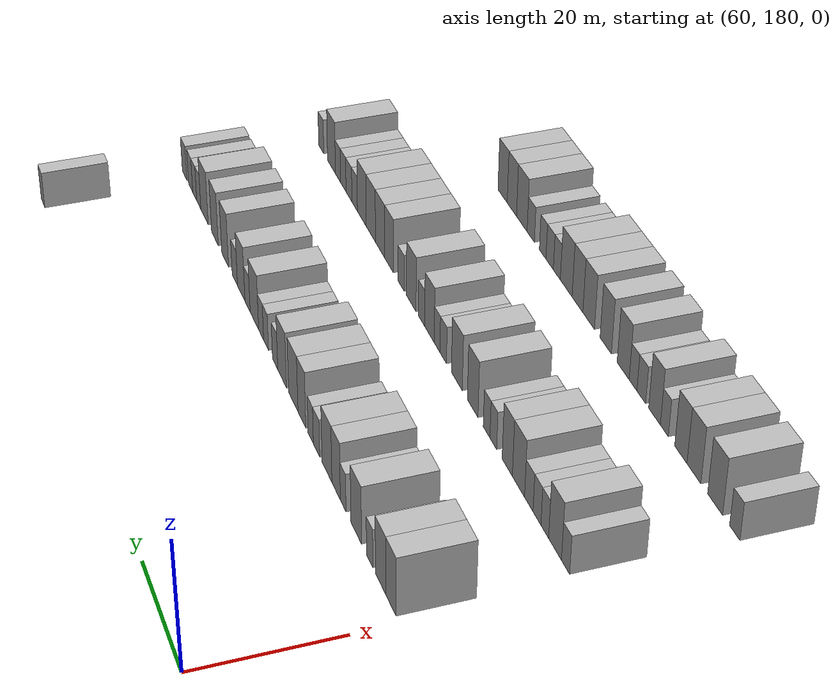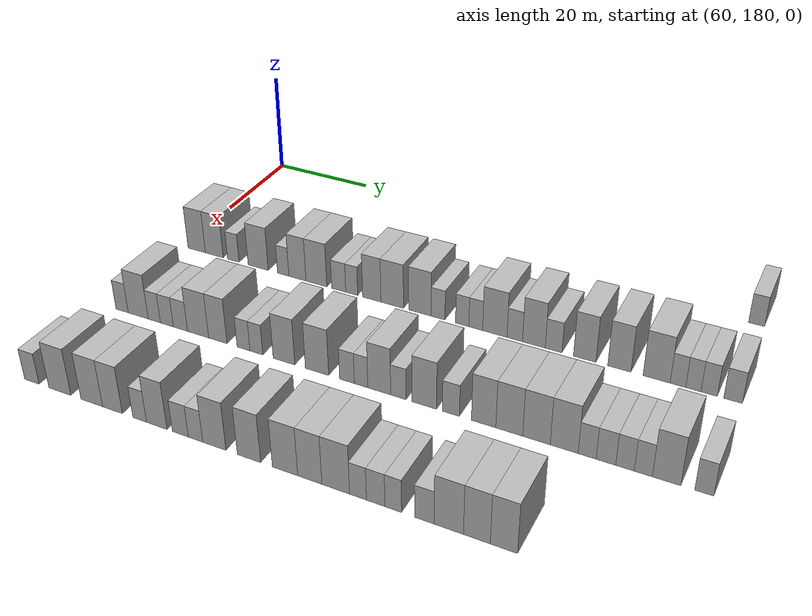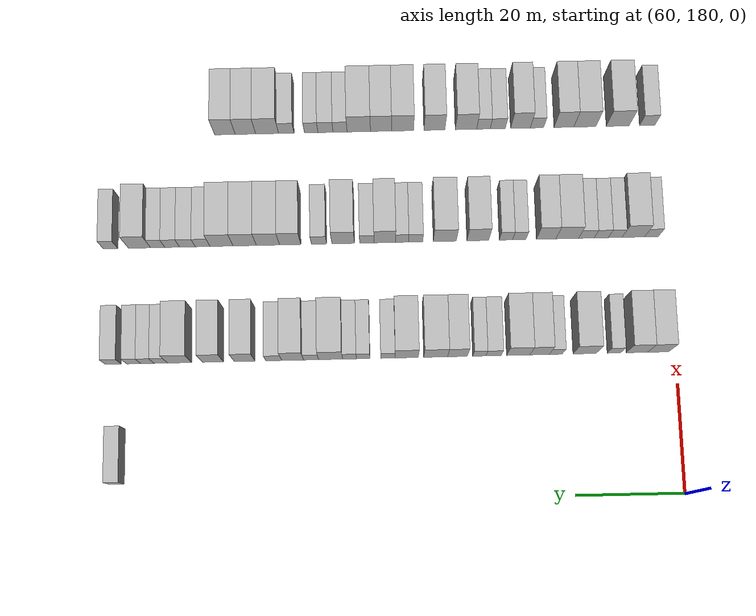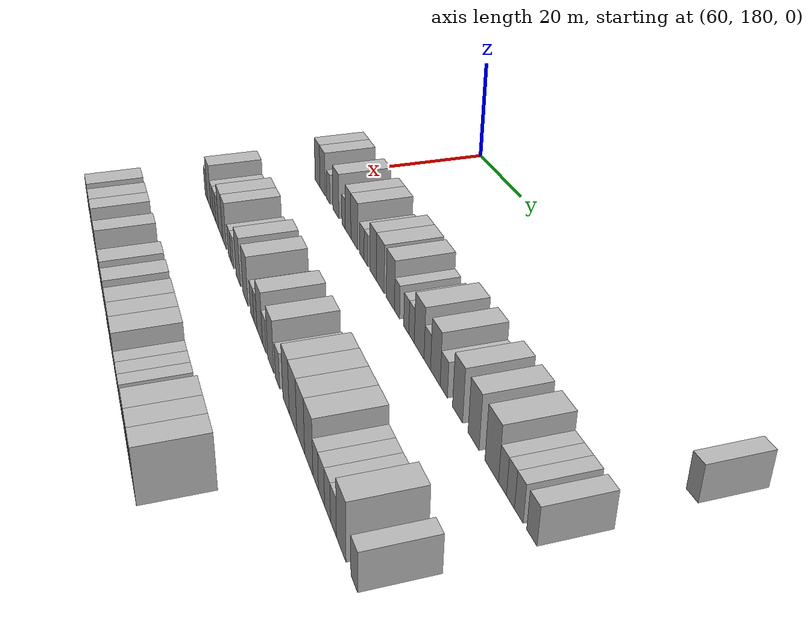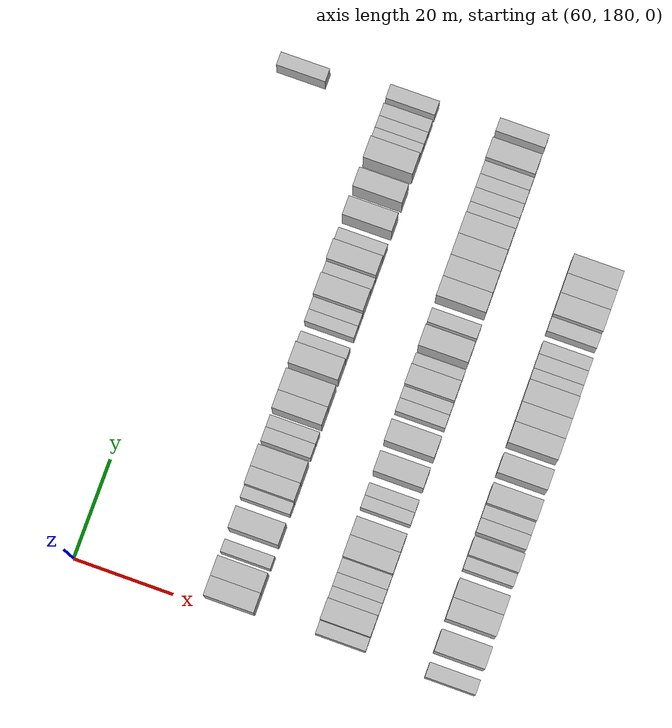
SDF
<sdf version="1.6">
 <world name="default">
  <model name="building_527">
   <static>1</static>
   <pose>69.0000 283.2264 0 0.000000 0.000000 0.000000</pose>
   <link name="link">
    <pose>0 0 3.00 0 0 0</pose>
    <collision name="collision"><geometry><box><size>10.0000 2.7192 6.0000</size></box></geometry></collision>
    <visual name="visual">
     <cast_shadows>0</cast_shadows>
     <geometry><box><size>10.0000 2.7192 6.0000</size></box></geometry>
     <material>
      <script>
       <uri>model://HANNAS_wall/materials/scripts</uri>
       <uri>model://HANNAS_wall/materials/textures</uri>
       <name>vrc/HANNAS_wall</name>
      </script>
     </material>
    </visual>
   </link>
  </model>
  <model name="building_696">
   <static>1</static>
   <pose>91.0000 183.3023 0 0.000000 0.000000 0.000000</pose>
   <link name="link">
    <pose>0 0 4.50 0 0 0</pose>
    <collision name="collision"><geometry><box><size>10.0000 3.9169 9.0000</size></box></geometry></collision>
    <visual name="visual">
     <cast_shadows>0</cast_shadows>
     <geometry><box><size>10.0000 3.9169 9.0000</size></box></geometry>
     <material>
      <script>
       <uri>model://HANNAS_wall/materials/scripts</uri>
       <uri>model://HANNAS_wall/materials/textures</uri>
       <name>vrc/HANNAS_wall</name>
      </script>
     </material>
    </visual>
   </link>
  </model>
  <model name="building_697">
   <static>1</static>
   <pose>91.0000 187.2503 0 0.000000 0.000000 0.000000</pose>
   <link name="link">
    <pose>0 0 4.50 0 0 0</pose>
    <collision name="collision"><geometry><box><size>10.0000 3.9792 9.0000</size></box></geometry></collision>
    <visual name="visual">
     <cast_shadows>0</cast_shadows>
     <geometry><box><size>10.0000 3.9792 9.0000</size></box></geometry>
     <material>
      <script>
       <uri>model://HANNAS_wall/materials/scripts</uri>
       <uri>model://HANNAS_wall/materials/textures</uri>
       <name>vrc/HANNAS_wall</name>
      </script>
     </material>
    </visual>
   </link>
  </model>
  <model name="building_698">
   <static>1</static>
   <pose>91.0000 191.5009 0 0.000000 0.000000 0.000000</pose>
   <link name="link">
    <pose>0 0 3.00 0 0 0</pose>
    <collision name="collision"><geometry><box><size>10.0000 2.5220 6.0000</size></box></geometry></collision>
    <visual name="visual">
     <cast_shadows>0</cast_shadows>
     <geometry><box><size>10.0000 2.5220 6.0000</size></box></geometry>
     <material>
      <script>
       <uri>model://HANNAS_wall/materials/scripts</uri>
       <uri>model://HANNAS_wall/materials/textures</uri>
       <name>vrc/HANNAS_wall</name>
      </script>
     </material>
    </visual>
   </link>
  </model>
  <model name="building_699">
   <static>1</static>
   <pose>91.0000 196.9347 0 0.000000 0.000000 0.000000</pose>
   <link name="link">
    <pose>0 0 4.50 0 0 0</pose>
    <collision name="collision"><geometry><box><size>10.0000 4.3456 9.0000</size></box></geometry></collision>
    <visual name="visual">
     <cast_shadows>0</cast_shadows>
     <geometry><box><size>10.0000 4.3456 9.0000</size></box></geometry>
     <material>
      <script>
       <uri>model://HANNAS_wall/materials/scripts</uri>
       <uri>model://HANNAS_wall/materials/textures</uri>
       <name>vrc/HANNAS_wall</name>
      </script>
     </material>
    </visual>
   </link>
  </model>
  <model name="building_700">
   <static>1</static>
   <pose>91.0000 202.3082 0 0.000000 0.000000 0.000000</pose>
   <link name="link">
    <pose>0 0 3.00 0 0 0</pose>
    <collision name="collision"><geometry><box><size>10.0000 2.4014 6.0000</size></box></geometry></collision>
    <visual name="visual">
     <cast_shadows>0</cast_shadows>
     <geometry><box><size>10.0000 2.4014 6.0000</size></box></geometry>
     <material>
      <script>
       <uri>model://HANNAS_wall/materials/scripts</uri>
       <uri>model://HANNAS_wall/materials/textures</uri>
       <name>vrc/HANNAS_wall</name>
      </script>
     </material>
    </visual>
   </link>
  </model>
  <model name="building_701">
   <static>1</static>
   <pose>91.0000 205.3127 0 0.000000 0.000000 0.000000</pose>
   <link name="link">
    <pose>0 0 4.50 0 0 0</pose>
    <collision name="collision"><geometry><box><size>10.0000 3.6076 9.0000</size></box></geometry></collision>
    <visual name="visual">
     <cast_shadows>0</cast_shadows>
     <geometry><box><size>10.0000 3.6076 9.0000</size></box></geometry>
     <material>
      <script>
       <uri>model://HANNAS_wall/materials/scripts</uri>
       <uri>model://HANNAS_wall/materials/textures</uri>
       <name>vrc/HANNAS_wall</name>
      </script>
     </material>
    </visual>
   </link>
  </model>
  <model name="building_702">
   <static>1</static>
   <pose>91.0000 209.2788 0 0.000000 0.000000 0.000000</pose>
   <link name="link">
    <pose>0 0 4.50 0 0 0</pose>
    <collision name="collision"><geometry><box><size>10.0000 4.3246 9.0000</size></box></geometry></collision>
    <visual name="visual">
     <cast_shadows>0</cast_shadows>
     <geometry><box><size>10.0000 4.3246 9.0000</size></box></geometry>
     <material>
      <script>
       <uri>model://HANNAS_wall/materials/scripts</uri>
       <uri>model://HANNAS_wall/materials/textures</uri>
       <name>vrc/HANNAS_wall</name>
      </script>
     </material>
    </visual>
   </link>
  </model>
  <model name="building_703">
   <static>1</static>
   <pose>91.0000 213.8764 0 0.000000 0.000000 0.000000</pose>
   <link name="link">
    <pose>0 0 3.00 0 0 0</pose>
    <collision name="collision"><geometry><box><size>10.0000 2.8707 6.0000</size></box></geometry></collision>
    <visual name="visual">
     <cast_shadows>0</cast_shadows>
     <geometry><box><size>10.0000 2.8707 6.0000</size></box></geometry>
     <material>
      <script>
       <uri>model://HANNAS_wall/materials/scripts</uri>
       <uri>model://HANNAS_wall/materials/textures</uri>
       <name>vrc/HANNAS_wall</name>
      </script>
     </material>
    </visual>
   </link>
  </model>
  <model name="building_704">
   <static>1</static>
   <pose>91.0000 216.5198 0 0.000000 0.000000 0.000000</pose>
   <link name="link">
    <pose>0 0 3.00 0 0 0</pose>
    <collision name="collision"><geometry><box><size>10.0000 2.4159 6.0000</size></box></geometry></collision>
    <visual name="visual">
     <cast_shadows>0</cast_shadows>
     <geometry><box><size>10.0000 2.4159 6.0000</size></box></geometry>
     <material>
      <script>
       <uri>model://HANNAS_wall/materials/scripts</uri>
       <uri>model://HANNAS_wall/materials/textures</uri>
       <name>vrc/HANNAS_wall</name>
      </script>
     </material>
    </visual>
   </link>
  </model>
  <model name="building_705">
   <static>1</static>
   <pose>91.0000 220.5530 0 0.000000 0.000000 0.000000</pose>
   <link name="link">
    <pose>0 0 4.50 0 0 0</pose>
    <collision name="collision"><geometry><box><size>10.0000 3.6505 9.0000</size></box></geometry></collision>
    <visual name="visual">
     <cast_shadows>0</cast_shadows>
     <geometry><box><size>10.0000 3.6505 9.0000</size></box></geometry>
     <material>
      <script>
       <uri>model://HANNAS_wall/materials/scripts</uri>
       <uri>model://HANNAS_wall/materials/textures</uri>
       <name>vrc/HANNAS_wall</name>
      </script>
     </material>
    </visual>
   </link>
  </model>
  <model name="building_706">
   <static>1</static>
   <pose>91.0000 224.5917 0 0.000000 0.000000 0.000000</pose>
   <link name="link">
    <pose>0 0 4.50 0 0 0</pose>
    <collision name="collision"><geometry><box><size>10.0000 4.4269 9.0000</size></box></geometry></collision>
    <visual name="visual">
     <cast_shadows>0</cast_shadows>
     <geometry><box><size>10.0000 4.4269 9.0000</size></box></geometry>
     <material>
      <script>
       <uri>model://HANNAS_wall/materials/scripts</uri>
       <uri>model://HANNAS_wall/materials/textures</uri>
       <name>vrc/HANNAS_wall</name>
      </script>
     </material>
    </visual>
   </link>
  </model>
  <model name="building_707">
   <static>1</static>
   <pose>91.0000 229.9655 0 0.000000 0.000000 0.000000</pose>
   <link name="link">
    <pose>0 0 4.50 0 0 0</pose>
    <collision name="collision"><geometry><box><size>10.0000 4.3207 9.0000</size></box></geometry></collision>
    <visual name="visual">
     <cast_shadows>0</cast_shadows>
     <geometry><box><size>10.0000 4.3207 9.0000</size></box></geometry>
     <material>
      <script>
       <uri>model://HANNAS_wall/materials/scripts</uri>
       <uri>model://HANNAS_wall/materials/textures</uri>
       <name>vrc/HANNAS_wall</name>
      </script>
     </material>
    </visual>
   </link>
  </model>
  <model name="building_708">
   <static>1</static>
   <pose>91.0000 233.4436 0 0.000000 0.000000 0.000000</pose>
   <link name="link">
    <pose>0 0 3.00 0 0 0</pose>
    <collision name="collision"><geometry><box><size>10.0000 2.6356 6.0000</size></box></geometry></collision>
    <visual name="visual">
     <cast_shadows>0</cast_shadows>
     <geometry><box><size>10.0000 2.6356 6.0000</size></box></geometry>
     <material>
      <script>
       <uri>model://HANNAS_wall/materials/scripts</uri>
       <uri>model://HANNAS_wall/materials/textures</uri>
       <name>vrc/HANNAS_wall</name>
      </script>
     </material>
    </visual>
   </link>
  </model>
  <model name="building_709">
   <static>1</static>
   <pose>91.0000 238.0039 0 0.000000 0.000000 0.000000</pose>
   <link name="link">
    <pose>0 0 3.00 0 0 0</pose>
    <collision name="collision"><geometry><box><size>10.0000 2.4851 6.0000</size></box></geometry></collision>
    <visual name="visual">
     <cast_shadows>0</cast_shadows>
     <geometry><box><size>10.0000 2.4851 6.0000</size></box></geometry>
     <material>
      <script>
       <uri>model://HANNAS_wall/materials/scripts</uri>
       <uri>model://HANNAS_wall/materials/textures</uri>
       <name>vrc/HANNAS_wall</name>
      </script>
     </material>
    </visual>
   </link>
  </model>
  <model name="building_710">
   <static>1</static>
   <pose>91.0000 240.5194 0 0.000000 0.000000 0.000000</pose>
   <link name="link">
    <pose>0 0 3.00 0 0 0</pose>
    <collision name="collision"><geometry><box><size>10.0000 2.5459 6.0000</size></box></geometry></collision>
    <visual name="visual">
     <cast_shadows>0</cast_shadows>
     <geometry><box><size>10.0000 2.5459 6.0000</size></box></geometry>
     <material>
      <script>
       <uri>model://HANNAS_wall/materials/scripts</uri>
       <uri>model://HANNAS_wall/materials/textures</uri>
       <name>vrc/HANNAS_wall</name>
      </script>
     </material>
    </visual>
   </link>
  </model>
  <model name="building_711">
   <static>1</static>
   <pose>91.0000 244.0189 0 0.000000 0.000000 0.000000</pose>
   <link name="link">
    <pose>0 0 4.50 0 0 0</pose>
    <collision name="collision"><geometry><box><size>10.0000 4.4532 9.0000</size></box></geometry></collision>
    <visual name="visual">
     <cast_shadows>0</cast_shadows>
     <geometry><box><size>10.0000 4.4532 9.0000</size></box></geometry>
     <material>
      <script>
       <uri>model://HANNAS_wall/materials/scripts</uri>
       <uri>model://HANNAS_wall/materials/textures</uri>
       <name>vrc/HANNAS_wall</name>
      </script>
     </material>
    </visual>
   </link>
  </model>
  <model name="building_712">
   <static>1</static>
   <pose>91.0000 247.6435 0 0.000000 0.000000 0.000000</pose>
   <link name="link">
    <pose>0 0 3.00 0 0 0</pose>
    <collision name="collision"><geometry><box><size>10.0000 2.7960 6.0000</size></box></geometry></collision>
    <visual name="visual">
     <cast_shadows>0</cast_shadows>
     <geometry><box><size>10.0000 2.7960 6.0000</size></box></geometry>
     <material>
      <script>
       <uri>model://HANNAS_wall/materials/scripts</uri>
       <uri>model://HANNAS_wall/materials/textures</uri>
       <name>vrc/HANNAS_wall</name>
      </script>
     </material>
    </visual>
   </link>
  </model>
  <model name="building_713">
   <static>1</static>
   <pose>91.0000 251.0618 0 0.000000 0.000000 0.000000</pose>
   <link name="link">
    <pose>0 0 4.50 0 0 0</pose>
    <collision name="collision"><geometry><box><size>10.0000 4.0406 9.0000</size></box></geometry></collision>
    <visual name="visual">
     <cast_shadows>0</cast_shadows>
     <geometry><box><size>10.0000 4.0406 9.0000</size></box></geometry>
     <material>
      <script>
       <uri>model://HANNAS_wall/materials/scripts</uri>
       <uri>model://HANNAS_wall/materials/textures</uri>
       <name>vrc/HANNAS_wall</name>
      </script>
     </material>
    </visual>
   </link>
  </model>
  <model name="building_714">
   <static>1</static>
   <pose>91.0000 254.5524 0 0.000000 0.000000 0.000000</pose>
   <link name="link">
    <pose>0 0 3.00 0 0 0</pose>
    <collision name="collision"><geometry><box><size>10.0000 2.9406 6.0000</size></box></geometry></collision>
    <visual name="visual">
     <cast_shadows>0</cast_shadows>
     <geometry><box><size>10.0000 2.9406 6.0000</size></box></geometry>
     <material>
      <script>
       <uri>model://HANNAS_wall/materials/scripts</uri>
       <uri>model://HANNAS_wall/materials/textures</uri>
       <name>vrc/HANNAS_wall</name>
      </script>
     </material>
    </visual>
   </link>
  </model>
  <model name="building_715">
   <static>1</static>
   <pose>91.0000 259.9507 0 0.000000 0.000000 0.000000</pose>
   <link name="link">
    <pose>0 0 4.50 0 0 0</pose>
    <collision name="collision"><geometry><box><size>10.0000 3.8560 9.0000</size></box></geometry></collision>
    <visual name="visual">
     <cast_shadows>0</cast_shadows>
     <geometry><box><size>10.0000 3.8560 9.0000</size></box></geometry>
     <material>
      <script>
       <uri>model://HANNAS_wall/materials/scripts</uri>
       <uri>model://HANNAS_wall/materials/textures</uri>
       <name>vrc/HANNAS_wall</name>
      </script>
     </material>
    </visual>
   </link>
  </model>
  <model name="building_716">
   <static>1</static>
   <pose>91.0000 265.8364 0 0.000000 0.000000 0.000000</pose>
   <link name="link">
    <pose>0 0 4.50 0 0 0</pose>
    <collision name="collision"><geometry><box><size>10.0000 3.9154 9.0000</size></box></geometry></collision>
    <visual name="visual">
     <cast_shadows>0</cast_shadows>
     <geometry><box><size>10.0000 3.9154 9.0000</size></box></geometry>
     <material>
      <script>
       <uri>model://HANNAS_wall/materials/scripts</uri>
       <uri>model://HANNAS_wall/materials/textures</uri>
       <name>vrc/HANNAS_wall</name>
      </script>
     </material>
    </visual>
   </link>
  </model>
  <model name="building_717">
   <static>1</static>
   <pose>91.0000 272.0075 0 0.000000 0.000000 0.000000</pose>
   <link name="link">
    <pose>0 0 4.50 0 0 0</pose>
    <collision name="collision"><geometry><box><size>10.0000 4.4269 9.0000</size></box></geometry></collision>
    <visual name="visual">
     <cast_shadows>0</cast_shadows>
     <geometry><box><size>10.0000 4.4269 9.0000</size></box></geometry>
     <material>
      <script>
       <uri>model://HANNAS_wall/materials/scripts</uri>
       <uri>model://HANNAS_wall/materials/textures</uri>
       <name>vrc/HANNAS_wall</name>
      </script>
     </material>
    </visual>
   </link>
  </model>
  <model name="building_718">
   <static>1</static>
   <pose>91.0000 275.4775 0 0.000000 0.000000 0.000000</pose>
   <link name="link">
    <pose>0 0 3.00 0 0 0</pose>
    <collision name="collision"><geometry><box><size>10.0000 2.5130 6.0000</size></box></geometry></collision>
    <visual name="visual">
     <cast_shadows>0</cast_shadows>
     <geometry><box><size>10.0000 2.5130 6.0000</size></box></geometry>
     <material>
      <script>
       <uri>model://HANNAS_wall/materials/scripts</uri>
       <uri>model://HANNAS_wall/materials/textures</uri>
       <name>vrc/HANNAS_wall</name>
      </script>
     </material>
    </visual>
   </link>
  </model>
  <model name="building_719">
   <static>1</static>
   <pose>91.0000 277.9604 0 0.000000 0.000000 0.000000</pose>
   <link name="link">
    <pose>0 0 3.00 0 0 0</pose>
    <collision name="collision"><geometry><box><size>10.0000 2.4526 6.0000</size></box></geometry></collision>
    <visual name="visual">
     <cast_shadows>0</cast_shadows>
     <geometry><box><size>10.0000 2.4526 6.0000</size></box></geometry>
     <material>
      <script>
       <uri>model://HANNAS_wall/materials/scripts</uri>
       <uri>model://HANNAS_wall/materials/textures</uri>
       <name>vrc/HANNAS_wall</name>
      </script>
     </material>
    </visual>
   </link>
  </model>
  <model name="building_720">
   <static>1</static>
   <pose>91.0000 280.4814 0 0.000000 0.000000 0.000000</pose>
   <link name="link">
    <pose>0 0 3.00 0 0 0</pose>
    <collision name="collision"><geometry><box><size>10.0000 2.5894 6.0000</size></box></geometry></collision>
    <visual name="visual">
     <cast_shadows>0</cast_shadows>
     <geometry><box><size>10.0000 2.5894 6.0000</size></box></geometry>
     <material>
      <script>
       <uri>model://HANNAS_wall/materials/scripts</uri>
       <uri>model://HANNAS_wall/materials/textures</uri>
       <name>vrc/HANNAS_wall</name>
      </script>
     </material>
    </visual>
   </link>
  </model>
  <model name="building_721">
   <static>1</static>
   <pose>91.0000 284.2351 0 0.000000 0.000000 0.000000</pose>
   <link name="link">
    <pose>0 0 3.00 0 0 0</pose>
    <collision name="collision"><geometry><box><size>10.0000 2.9180 6.0000</size></box></geometry></collision>
    <visual name="visual">
     <cast_shadows>0</cast_shadows>
     <geometry><box><size>10.0000 2.9180 6.0000</size></box></geometry>
     <material>
      <script>
       <uri>model://HANNAS_wall/materials/scripts</uri>
       <uri>model://HANNAS_wall/materials/textures</uri>
       <name>vrc/HANNAS_wall</name>
      </script>
     </material>
    </visual>
   </link>
  </model>
  <model name="building_893">
   <static>1</static>
   <pose>113.0000 183.1441 0 0.000000 0.000000 0.000000</pose>
   <link name="link">
    <pose>0 0 3.00 0 0 0</pose>
    <collision name="collision"><geometry><box><size>10.0000 2.6440 6.0000</size></box></geometry></collision>
    <visual name="visual">
     <cast_shadows>0</cast_shadows>
     <geometry><box><size>10.0000 2.6440 6.0000</size></box></geometry>
     <material>
      <script>
       <uri>model://HANNAS_wall/materials/scripts</uri>
       <uri>model://HANNAS_wall/materials/textures</uri>
       <name>vrc/HANNAS_wall</name>
      </script>
     </material>
    </visual>
   </link>
  </model>
  <model name="building_894">
   <static>1</static>
   <pose>113.0000 186.5907 0 0.000000 0.000000 0.000000</pose>
   <link name="link">
    <pose>0 0 4.50 0 0 0</pose>
    <collision name="collision"><geometry><box><size>10.0000 4.2491 9.0000</size></box></geometry></collision>
    <visual name="visual">
     <cast_shadows>0</cast_shadows>
     <geometry><box><size>10.0000 4.2491 9.0000</size></box></geometry>
     <material>
      <script>
       <uri>model://HANNAS_wall/materials/scripts</uri>
       <uri>model://HANNAS_wall/materials/textures</uri>
       <name>vrc/HANNAS_wall</name>
      </script>
     </material>
    </visual>
   </link>
  </model>
  <model name="building_895">
   <static>1</static>
   <pose>113.0000 190.0043 0 0.000000 0.000000 0.000000</pose>
   <link name="link">
    <pose>0 0 3.00 0 0 0</pose>
    <collision name="collision"><geometry><box><size>10.0000 2.5781 6.0000</size></box></geometry></collision>
    <visual name="visual">
     <cast_shadows>0</cast_shadows>
     <geometry><box><size>10.0000 2.5781 6.0000</size></box></geometry>
     <material>
      <script>
       <uri>model://HANNAS_wall/materials/scripts</uri>
       <uri>model://HANNAS_wall/materials/textures</uri>
       <name>vrc/HANNAS_wall</name>
      </script>
     </material>
    </visual>
   </link>
  </model>
  <model name="building_896">
   <static>1</static>
   <pose>113.0000 192.6362 0 0.000000 0.000000 0.000000</pose>
   <link name="link">
    <pose>0 0 3.00 0 0 0</pose>
    <collision name="collision"><geometry><box><size>10.0000 2.6856 6.0000</size></box></geometry></collision>
    <visual name="visual">
     <cast_shadows>0</cast_shadows>
     <geometry><box><size>10.0000 2.6856 6.0000</size></box></geometry>
     <material>
      <script>
       <uri>model://HANNAS_wall/materials/scripts</uri>
       <uri>model://HANNAS_wall/materials/textures</uri>
       <name>vrc/HANNAS_wall</name>
      </script>
     </material>
    </visual>
   </link>
  </model>
  <model name="building_897">
   <static>1</static>
   <pose>113.0000 195.4423 0 0.000000 0.000000 0.000000</pose>
   <link name="link">
    <pose>0 0 3.00 0 0 0</pose>
    <collision name="collision"><geometry><box><size>10.0000 2.9266 6.0000</size></box></geometry></collision>
    <visual name="visual">
     <cast_shadows>0</cast_shadows>
     <geometry><box><size>10.0000 2.9266 6.0000</size></box></geometry>
     <material>
      <script>
       <uri>model://HANNAS_wall/materials/scripts</uri>
       <uri>model://HANNAS_wall/materials/textures</uri>
       <name>vrc/HANNAS_wall</name>
      </script>
     </material>
    </visual>
   </link>
  </model>
  <model name="building_898">
   <static>1</static>
   <pose>113.0000 199.0591 0 0.000000 0.000000 0.000000</pose>
   <link name="link">
    <pose>0 0 4.50 0 0 0</pose>
    <collision name="collision"><geometry><box><size>10.0000 4.3070 9.0000</size></box></geometry></collision>
    <visual name="visual">
     <cast_shadows>0</cast_shadows>
     <geometry><box><size>10.0000 4.3070 9.0000</size></box></geometry>
     <material>
      <script>
       <uri>model://HANNAS_wall/materials/scripts</uri>
       <uri>model://HANNAS_wall/materials/textures</uri>
       <name>vrc/HANNAS_wall</name>
      </script>
     </material>
    </visual>
   </link>
  </model>
  <model name="building_899">
   <static>1</static>
   <pose>113.0000 203.0566 0 0.000000 0.000000 0.000000</pose>
   <link name="link">
    <pose>0 0 4.50 0 0 0</pose>
    <collision name="collision"><geometry><box><size>10.0000 3.6880 9.0000</size></box></geometry></collision>
    <visual name="visual">
     <cast_shadows>0</cast_shadows>
     <geometry><box><size>10.0000 3.6880 9.0000</size></box></geometry>
     <material>
      <script>
       <uri>model://HANNAS_wall/materials/scripts</uri>
       <uri>model://HANNAS_wall/materials/textures</uri>
       <name>vrc/HANNAS_wall</name>
      </script>
     </material>
    </visual>
   </link>
  </model>
  <model name="building_900">
   <static>1</static>
   <pose>113.0000 208.1593 0 0.000000 0.000000 0.000000</pose>
   <link name="link">
    <pose>0 0 3.00 0 0 0</pose>
    <collision name="collision"><geometry><box><size>10.0000 2.5176 6.0000</size></box></geometry></collision>
    <visual name="visual">
     <cast_shadows>0</cast_shadows>
     <geometry><box><size>10.0000 2.5176 6.0000</size></box></geometry>
     <material>
      <script>
       <uri>model://HANNAS_wall/materials/scripts</uri>
       <uri>model://HANNAS_wall/materials/textures</uri>
       <name>vrc/HANNAS_wall</name>
      </script>
     </material>
    </visual>
   </link>
  </model>
  <model name="building_901">
   <static>1</static>
   <pose>113.0000 210.6706 0 0.000000 0.000000 0.000000</pose>
   <link name="link">
    <pose>0 0 3.00 0 0 0</pose>
    <collision name="collision"><geometry><box><size>10.0000 2.5049 6.0000</size></box></geometry></collision>
    <visual name="visual">
     <cast_shadows>0</cast_shadows>
     <geometry><box><size>10.0000 2.5049 6.0000</size></box></geometry>
     <material>
      <script>
       <uri>model://HANNAS_wall/materials/scripts</uri>
       <uri>model://HANNAS_wall/materials/textures</uri>
       <name>vrc/HANNAS_wall</name>
      </script>
     </material>
    </visual>
   </link>
  </model>
  <model name="building_902">
   <static>1</static>
   <pose>113.0000 215.9800 0 0.000000 0.000000 0.000000</pose>
   <link name="link">
    <pose>0 0 4.50 0 0 0</pose>
    <collision name="collision"><geometry><box><size>10.0000 4.1140 9.0000</size></box></geometry></collision>
    <visual name="visual">
     <cast_shadows>0</cast_shadows>
     <geometry><box><size>10.0000 4.1140 9.0000</size></box></geometry>
     <material>
      <script>
       <uri>model://HANNAS_wall/materials/scripts</uri>
       <uri>model://HANNAS_wall/materials/textures</uri>
       <name>vrc/HANNAS_wall</name>
      </script>
     </material>
    </visual>
   </link>
  </model>
  <model name="building_903">
   <static>1</static>
   <pose>113.0000 222.2070 0 0.000000 0.000000 0.000000</pose>
   <link name="link">
    <pose>0 0 4.50 0 0 0</pose>
    <collision name="collision"><geometry><box><size>10.0000 4.3399 9.0000</size></box></geometry></collision>
    <visual name="visual">
     <cast_shadows>0</cast_shadows>
     <geometry><box><size>10.0000 4.3399 9.0000</size></box></geometry>
     <material>
      <script>
       <uri>model://HANNAS_wall/materials/scripts</uri>
       <uri>model://HANNAS_wall/materials/textures</uri>
       <name>vrc/HANNAS_wall</name>
      </script>
     </material>
    </visual>
   </link>
  </model>
  <model name="building_904">
   <static>1</static>
   <pose>113.0000 227.7220 0 0.000000 0.000000 0.000000</pose>
   <link name="link">
    <pose>0 0 3.00 0 0 0</pose>
    <collision name="collision"><geometry><box><size>10.0000 2.6901 6.0000</size></box></geometry></collision>
    <visual name="visual">
     <cast_shadows>0</cast_shadows>
     <geometry><box><size>10.0000 2.6901 6.0000</size></box></geometry>
     <material>
      <script>
       <uri>model://HANNAS_wall/materials/scripts</uri>
       <uri>model://HANNAS_wall/materials/textures</uri>
       <name>vrc/HANNAS_wall</name>
      </script>
     </material>
    </visual>
   </link>
  </model>
  <model name="building_905">
   <static>1</static>
   <pose>113.0000 230.2750 0 0.000000 0.000000 0.000000</pose>
   <link name="link">
    <pose>0 0 3.00 0 0 0</pose>
    <collision name="collision"><geometry><box><size>10.0000 2.4159 6.0000</size></box></geometry></collision>
    <visual name="visual">
     <cast_shadows>0</cast_shadows>
     <geometry><box><size>10.0000 2.4159 6.0000</size></box></geometry>
     <material>
      <script>
       <uri>model://HANNAS_wall/materials/scripts</uri>
       <uri>model://HANNAS_wall/materials/textures</uri>
       <name>vrc/HANNAS_wall</name>
      </script>
     </material>
    </visual>
   </link>
  </model>
  <model name="building_906">
   <static>1</static>
   <pose>113.0000 233.5070 0 0.000000 0.000000 0.000000</pose>
   <link name="link">
    <pose>0 0 4.50 0 0 0</pose>
    <collision name="collision"><geometry><box><size>10.0000 4.0481 9.0000</size></box></geometry></collision>
    <visual name="visual">
     <cast_shadows>0</cast_shadows>
     <geometry><box><size>10.0000 4.0481 9.0000</size></box></geometry>
     <material>
      <script>
       <uri>model://HANNAS_wall/materials/scripts</uri>
       <uri>model://HANNAS_wall/materials/textures</uri>
       <name>vrc/HANNAS_wall</name>
      </script>
     </material>
    </visual>
   </link>
  </model>
  <model name="building_907">
   <static>1</static>
   <pose>113.0000 236.8852 0 0.000000 0.000000 0.000000</pose>
   <link name="link">
    <pose>0 0 3.00 0 0 0</pose>
    <collision name="collision"><geometry><box><size>10.0000 2.7085 6.0000</size></box></geometry></collision>
    <visual name="visual">
     <cast_shadows>0</cast_shadows>
     <geometry><box><size>10.0000 2.7085 6.0000</size></box></geometry>
     <material>
      <script>
       <uri>model://HANNAS_wall/materials/scripts</uri>
       <uri>model://HANNAS_wall/materials/textures</uri>
       <name>vrc/HANNAS_wall</name>
      </script>
     </material>
    </visual>
   </link>
  </model>
  <model name="building_908">
   <static>1</static>
   <pose>113.0000 241.3673 0 0.000000 0.000000 0.000000</pose>
   <link name="link">
    <pose>0 0 4.50 0 0 0</pose>
    <collision name="collision"><geometry><box><size>10.0000 4.2557 9.0000</size></box></geometry></collision>
    <visual name="visual">
     <cast_shadows>0</cast_shadows>
     <geometry><box><size>10.0000 4.2557 9.0000</size></box></geometry>
     <material>
      <script>
       <uri>model://HANNAS_wall/materials/scripts</uri>
       <uri>model://HANNAS_wall/materials/textures</uri>
       <name>vrc/HANNAS_wall</name>
      </script>
     </material>
    </visual>
   </link>
  </model>
  <model name="building_909">
   <static>1</static>
   <pose>113.0000 245.9298 0 0.000000 0.000000 0.000000</pose>
   <link name="link">
    <pose>0 0 3.00 0 0 0</pose>
    <collision name="collision"><geometry><box><size>10.0000 2.8692 6.0000</size></box></geometry></collision>
    <visual name="visual">
     <cast_shadows>0</cast_shadows>
     <geometry><box><size>10.0000 2.8692 6.0000</size></box></geometry>
     <material>
      <script>
       <uri>model://HANNAS_wall/materials/scripts</uri>
       <uri>model://HANNAS_wall/materials/textures</uri>
       <name>vrc/HANNAS_wall</name>
      </script>
     </material>
    </visual>
   </link>
  </model>
  <model name="building_910">
   <static>1</static>
   <pose>113.0000 251.3701 0 0.000000 0.000000 0.000000</pose>
   <link name="link">
    <pose>0 0 4.50 0 0 0</pose>
    <collision name="collision"><geometry><box><size>10.0000 4.0114 9.0000</size></box></geometry></collision>
    <visual name="visual">
     <cast_shadows>0</cast_shadows>
     <geometry><box><size>10.0000 4.0114 9.0000</size></box></geometry>
     <material>
      <script>
       <uri>model://HANNAS_wall/materials/scripts</uri>
       <uri>model://HANNAS_wall/materials/textures</uri>
       <name>vrc/HANNAS_wall</name>
      </script>
     </material>
    </visual>
   </link>
  </model>
  <model name="building_911">
   <static>1</static>
   <pose>113.0000 255.5593 0 0.000000 0.000000 0.000000</pose>
   <link name="link">
    <pose>0 0 4.50 0 0 0</pose>
    <collision name="collision"><geometry><box><size>10.0000 4.3670 9.0000</size></box></geometry></collision>
    <visual name="visual">
     <cast_shadows>0</cast_shadows>
     <geometry><box><size>10.0000 4.3670 9.0000</size></box></geometry>
     <material>
      <script>
       <uri>model://HANNAS_wall/materials/scripts</uri>
       <uri>model://HANNAS_wall/materials/textures</uri>
       <name>vrc/HANNAS_wall</name>
      </script>
     </material>
    </visual>
   </link>
  </model>
  <model name="building_912">
   <static>1</static>
   <pose>113.0000 259.9300 0 0.000000 0.000000 0.000000</pose>
   <link name="link">
    <pose>0 0 4.50 0 0 0</pose>
    <collision name="collision"><geometry><box><size>10.0000 4.3746 9.0000</size></box></geometry></collision>
    <visual name="visual">
     <cast_shadows>0</cast_shadows>
     <geometry><box><size>10.0000 4.3746 9.0000</size></box></geometry>
     <material>
      <script>
       <uri>model://HANNAS_wall/materials/scripts</uri>
       <uri>model://HANNAS_wall/materials/textures</uri>
       <name>vrc/HANNAS_wall</name>
      </script>
     </material>
    </visual>
   </link>
  </model>
  <model name="building_913">
   <static>1</static>
   <pose>113.0000 264.3036 0 0.000000 0.000000 0.000000</pose>
   <link name="link">
    <pose>0 0 4.50 0 0 0</pose>
    <collision name="collision"><geometry><box><size>10.0000 4.3725 9.0000</size></box></geometry></collision>
    <visual name="visual">
     <cast_shadows>0</cast_shadows>
     <geometry><box><size>10.0000 4.3725 9.0000</size></box></geometry>
     <material>
      <script>
       <uri>model://HANNAS_wall/materials/scripts</uri>
       <uri>model://HANNAS_wall/materials/textures</uri>
       <name>vrc/HANNAS_wall</name>
      </script>
     </material>
    </visual>
   </link>
  </model>
  <model name="building_914">
   <static>1</static>
   <pose>113.0000 267.8734 0 0.000000 0.000000 0.000000</pose>
   <link name="link">
    <pose>0 0 3.00 0 0 0</pose>
    <collision name="collision"><geometry><box><size>10.0000 2.7670 6.0000</size></box></geometry></collision>
    <visual name="visual">
     <cast_shadows>0</cast_shadows>
     <geometry><box><size>10.0000 2.7670 6.0000</size></box></geometry>
     <material>
      <script>
       <uri>model://HANNAS_wall/materials/scripts</uri>
       <uri>model://HANNAS_wall/materials/textures</uri>
       <name>vrc/HANNAS_wall</name>
      </script>
     </material>
    </visual>
   </link>
  </model>
  <model name="building_915">
   <static>1</static>
   <pose>113.0000 270.7370 0 0.000000 0.000000 0.000000</pose>
   <link name="link">
    <pose>0 0 3.00 0 0 0</pose>
    <collision name="collision"><geometry><box><size>10.0000 2.9601 6.0000</size></box></geometry></collision>
    <visual name="visual">
     <cast_shadows>0</cast_shadows>
     <geometry><box><size>10.0000 2.9601 6.0000</size></box></geometry>
     <material>
      <script>
       <uri>model://HANNAS_wall/materials/scripts</uri>
       <uri>model://HANNAS_wall/materials/textures</uri>
       <name>vrc/HANNAS_wall</name>
      </script>
     </material>
    </visual>
   </link>
  </model>
  <model name="building_916">
   <static>1</static>
   <pose>113.0000 273.6113 0 0.000000 0.000000 0.000000</pose>
   <link name="link">
    <pose>0 0 3.00 0 0 0</pose>
    <collision name="collision"><geometry><box><size>10.0000 2.7885 6.0000</size></box></geometry></collision>
    <visual name="visual">
     <cast_shadows>0</cast_shadows>
     <geometry><box><size>10.0000 2.7885 6.0000</size></box></geometry>
     <material>
      <script>
       <uri>model://HANNAS_wall/materials/scripts</uri>
       <uri>model://HANNAS_wall/materials/textures</uri>
       <name>vrc/HANNAS_wall</name>
      </script>
     </material>
    </visual>
   </link>
  </model>
  <model name="building_917">
   <static>1</static>
   <pose>113.0000 276.3460 0 0.000000 0.000000 0.000000</pose>
   <link name="link">
    <pose>0 0 3.00 0 0 0</pose>
    <collision name="collision"><geometry><box><size>10.0000 2.6810 6.0000</size></box></geometry></collision>
    <visual name="visual">
     <cast_shadows>0</cast_shadows>
     <geometry><box><size>10.0000 2.6810 6.0000</size></box></geometry>
     <material>
      <script>
       <uri>model://HANNAS_wall/materials/scripts</uri>
       <uri>model://HANNAS_wall/materials/textures</uri>
       <name>vrc/HANNAS_wall</name>
      </script>
     </material>
    </visual>
   </link>
  </model>
  <model name="building_918">
   <static>1</static>
   <pose>113.0000 279.7643 0 0.000000 0.000000 0.000000</pose>
   <link name="link">
    <pose>0 0 4.50 0 0 0</pose>
    <collision name="collision"><geometry><box><size>10.0000 4.1554 9.0000</size></box></geometry></collision>
    <visual name="visual">
     <cast_shadows>0</cast_shadows>
     <geometry><box><size>10.0000 4.1554 9.0000</size></box></geometry>
     <material>
      <script>
       <uri>model://HANNAS_wall/materials/scripts</uri>
       <uri>model://HANNAS_wall/materials/textures</uri>
       <name>vrc/HANNAS_wall</name>
      </script>
     </material>
    </visual>
   </link>
  </model>
  <model name="building_919">
   <static>1</static>
   <pose>113.0000 285.2070 0 0.000000 0.000000 0.000000</pose>
   <link name="link">
    <pose>0 0 3.00 0 0 0</pose>
    <collision name="collision"><geometry><box><size>10.0000 2.7301 6.0000</size></box></geometry></collision>
    <visual name="visual">
     <cast_shadows>0</cast_shadows>
     <geometry><box><size>10.0000 2.7301 6.0000</size></box></geometry>
     <material>
      <script>
       <uri>model://HANNAS_wall/materials/scripts</uri>
       <uri>model://HANNAS_wall/materials/textures</uri>
       <name>vrc/HANNAS_wall</name>
      </script>
     </material>
    </visual>
   </link>
  </model>
  <model name="building_1068">
   <static>1</static>
   <pose>135.0000 182.5680 0 0.000000 0.000000 0.000000</pose>
   <link name="link">
    <pose>0 0 3.00 0 0 0</pose>
    <collision name="collision"><geometry><box><size>10.0000 2.9489 6.0000</size></box></geometry></collision>
    <visual name="visual">
     <cast_shadows>0</cast_shadows>
     <geometry><box><size>10.0000 2.9489 6.0000</size></box></geometry>
     <material>
      <script>
       <uri>model://HANNAS_wall/materials/scripts</uri>
       <uri>model://HANNAS_wall/materials/textures</uri>
       <name>vrc/HANNAS_wall</name>
      </script>
     </material>
    </visual>
   </link>
  </model>
  <model name="building_1069">
   <static>1</static>
   <pose>135.0000 188.2480 0 0.000000 0.000000 0.000000</pose>
   <link name="link">
    <pose>0 0 4.50 0 0 0</pose>
    <collision name="collision"><geometry><box><size>10.0000 4.4110 9.0000</size></box></geometry></collision>
    <visual name="visual">
     <cast_shadows>0</cast_shadows>
     <geometry><box><size>10.0000 4.4110 9.0000</size></box></geometry>
     <material>
      <script>
       <uri>model://HANNAS_wall/materials/scripts</uri>
       <uri>model://HANNAS_wall/materials/textures</uri>
       <name>vrc/HANNAS_wall</name>
      </script>
     </material>
    </visual>
   </link>
  </model>
  <model name="building_1070">
   <static>1</static>
   <pose>135.0000 194.5734 0 0.000000 0.000000 0.000000</pose>
   <link name="link">
    <pose>0 0 4.50 0 0 0</pose>
    <collision name="collision"><geometry><box><size>10.0000 4.2398 9.0000</size></box></geometry></collision>
    <visual name="visual">
     <cast_shadows>0</cast_shadows>
     <geometry><box><size>10.0000 4.2398 9.0000</size></box></geometry>
     <material>
      <script>
       <uri>model://HANNAS_wall/materials/scripts</uri>
       <uri>model://HANNAS_wall/materials/textures</uri>
       <name>vrc/HANNAS_wall</name>
      </script>
     </material>
    </visual>
   </link>
  </model>
  <model name="building_1071">
   <static>1</static>
   <pose>135.0000 198.5985 0 0.000000 0.000000 0.000000</pose>
   <link name="link">
    <pose>0 0 4.50 0 0 0</pose>
    <collision name="collision"><geometry><box><size>10.0000 3.8104 9.0000</size></box></geometry></collision>
    <visual name="visual">
     <cast_shadows>0</cast_shadows>
     <geometry><box><size>10.0000 3.8104 9.0000</size></box></geometry>
     <material>
      <script>
       <uri>model://HANNAS_wall/materials/scripts</uri>
       <uri>model://HANNAS_wall/materials/textures</uri>
       <name>vrc/HANNAS_wall</name>
      </script>
     </material>
    </visual>
   </link>
  </model>
  <model name="building_1072">
   <static>1</static>
   <pose>135.0000 203.7906 0 0.000000 0.000000 0.000000</pose>
   <link name="link">
    <pose>0 0 3.00 0 0 0</pose>
    <collision name="collision"><geometry><box><size>10.0000 2.5738 6.0000</size></box></geometry></collision>
    <visual name="visual">
     <cast_shadows>0</cast_shadows>
     <geometry><box><size>10.0000 2.5738 6.0000</size></box></geometry>
     <material>
      <script>
       <uri>model://HANNAS_wall/materials/scripts</uri>
       <uri>model://HANNAS_wall/materials/textures</uri>
       <name>vrc/HANNAS_wall</name>
      </script>
     </material>
    </visual>
   </link>
  </model>
  <model name="building_1073">
   <static>1</static>
   <pose>135.0000 206.9754 0 0.000000 0.000000 0.000000</pose>
   <link name="link">
    <pose>0 0 4.50 0 0 0</pose>
    <collision name="collision"><geometry><box><size>10.0000 3.7957 9.0000</size></box></geometry></collision>
    <visual name="visual">
     <cast_shadows>0</cast_shadows>
     <geometry><box><size>10.0000 3.7957 9.0000</size></box></geometry>
     <material>
      <script>
       <uri>model://HANNAS_wall/materials/scripts</uri>
       <uri>model://HANNAS_wall/materials/textures</uri>
       <name>vrc/HANNAS_wall</name>
      </script>
     </material>
    </visual>
   </link>
  </model>
  <model name="building_1074">
   <static>1</static>
   <pose>135.0000 211.3243 0 0.000000 0.000000 0.000000</pose>
   <link name="link">
    <pose>0 0 3.00 0 0 0</pose>
    <collision name="collision"><geometry><box><size>10.0000 2.9021 6.0000</size></box></geometry></collision>
    <visual name="visual">
     <cast_shadows>0</cast_shadows>
     <geometry><box><size>10.0000 2.9021 6.0000</size></box></geometry>
     <material>
      <script>
       <uri>model://HANNAS_wall/materials/scripts</uri>
       <uri>model://HANNAS_wall/materials/textures</uri>
       <name>vrc/HANNAS_wall</name>
      </script>
     </material>
    </visual>
   </link>
  </model>
  <model name="building_1075">
   <static>1</static>
   <pose>135.0000 214.0790 0 0.000000 0.000000 0.000000</pose>
   <link name="link">
    <pose>0 0 3.00 0 0 0</pose>
    <collision name="collision"><geometry><box><size>10.0000 2.6074 6.0000</size></box></geometry></collision>
    <visual name="visual">
     <cast_shadows>0</cast_shadows>
     <geometry><box><size>10.0000 2.6074 6.0000</size></box></geometry>
     <material>
      <script>
       <uri>model://HANNAS_wall/materials/scripts</uri>
       <uri>model://HANNAS_wall/materials/textures</uri>
       <name>vrc/HANNAS_wall</name>
      </script>
     </material>
    </visual>
   </link>
  </model>
  <model name="building_1076">
   <static>1</static>
   <pose>135.0000 217.4425 0 0.000000 0.000000 0.000000</pose>
   <link name="link">
    <pose>0 0 4.50 0 0 0</pose>
    <collision name="collision"><geometry><box><size>10.0000 4.1196 9.0000</size></box></geometry></collision>
    <visual name="visual">
     <cast_shadows>0</cast_shadows>
     <geometry><box><size>10.0000 4.1196 9.0000</size></box></geometry>
     <material>
      <script>
       <uri>model://HANNAS_wall/materials/scripts</uri>
       <uri>model://HANNAS_wall/materials/textures</uri>
       <name>vrc/HANNAS_wall</name>
      </script>
     </material>
    </visual>
   </link>
  </model>
  <model name="building_1077">
   <static>1</static>
   <pose>135.0000 223.5140 0 0.000000 0.000000 0.000000</pose>
   <link name="link">
    <pose>0 0 4.50 0 0 0</pose>
    <collision name="collision"><geometry><box><size>10.0000 4.0234 9.0000</size></box></geometry></collision>
    <visual name="visual">
     <cast_shadows>0</cast_shadows>
     <geometry><box><size>10.0000 4.0234 9.0000</size></box></geometry>
     <material>
      <script>
       <uri>model://HANNAS_wall/materials/scripts</uri>
       <uri>model://HANNAS_wall/materials/textures</uri>
       <name>vrc/HANNAS_wall</name>
      </script>
     </material>
    </visual>
   </link>
  </model>
  <model name="building_1078">
   <static>1</static>
   <pose>135.0000 229.6555 0 0.000000 0.000000 0.000000</pose>
   <link name="link">
    <pose>0 0 4.50 0 0 0</pose>
    <collision name="collision"><geometry><box><size>10.0000 4.2597 9.0000</size></box></geometry></collision>
    <visual name="visual">
     <cast_shadows>0</cast_shadows>
     <geometry><box><size>10.0000 4.2597 9.0000</size></box></geometry>
     <material>
      <script>
       <uri>model://HANNAS_wall/materials/scripts</uri>
       <uri>model://HANNAS_wall/materials/textures</uri>
       <name>vrc/HANNAS_wall</name>
      </script>
     </material>
    </visual>
   </link>
  </model>
  <model name="building_1079">
   <static>1</static>
   <pose>135.0000 233.7898 0 0.000000 0.000000 0.000000</pose>
   <link name="link">
    <pose>0 0 4.50 0 0 0</pose>
    <collision name="collision"><geometry><box><size>10.0000 4.0088 9.0000</size></box></geometry></collision>
    <visual name="visual">
     <cast_shadows>0</cast_shadows>
     <geometry><box><size>10.0000 4.0088 9.0000</size></box></geometry>
     <material>
      <script>
       <uri>model://HANNAS_wall/materials/scripts</uri>
       <uri>model://HANNAS_wall/materials/textures</uri>
       <name>vrc/HANNAS_wall</name>
      </script>
     </material>
    </visual>
   </link>
  </model>
  <model name="building_1080">
   <static>1</static>
   <pose>135.0000 238.0379 0 0.000000 0.000000 0.000000</pose>
   <link name="link">
    <pose>0 0 4.50 0 0 0</pose>
    <collision name="collision"><geometry><box><size>10.0000 4.4874 9.0000</size></box></geometry></collision>
    <visual name="visual">
     <cast_shadows>0</cast_shadows>
     <geometry><box><size>10.0000 4.4874 9.0000</size></box></geometry>
     <material>
      <script>
       <uri>model://HANNAS_wall/materials/scripts</uri>
       <uri>model://HANNAS_wall/materials/textures</uri>
       <name>vrc/HANNAS_wall</name>
      </script>
     </material>
    </visual>
   </link>
  </model>
  <model name="building_1081">
   <static>1</static>
   <pose>135.0000 241.6251 0 0.000000 0.000000 0.000000</pose>
   <link name="link">
    <pose>0 0 3.00 0 0 0</pose>
    <collision name="collision"><geometry><box><size>10.0000 2.6871 6.0000</size></box></geometry></collision>
    <visual name="visual">
     <cast_shadows>0</cast_shadows>
     <geometry><box><size>10.0000 2.6871 6.0000</size></box></geometry>
     <material>
      <script>
       <uri>model://HANNAS_wall/materials/scripts</uri>
       <uri>model://HANNAS_wall/materials/textures</uri>
       <name>vrc/HANNAS_wall</name>
      </script>
     </material>
    </visual>
   </link>
  </model>
  <model name="building_1082">
   <static>1</static>
   <pose>135.0000 244.4249 0 0.000000 0.000000 0.000000</pose>
   <link name="link">
    <pose>0 0 3.00 0 0 0</pose>
    <collision name="collision"><geometry><box><size>10.0000 2.9124 6.0000</size></box></geometry></collision>
    <visual name="visual">
     <cast_shadows>0</cast_shadows>
     <geometry><box><size>10.0000 2.9124 6.0000</size></box></geometry>
     <material>
      <script>
       <uri>model://HANNAS_wall/materials/scripts</uri>
       <uri>model://HANNAS_wall/materials/textures</uri>
       <name>vrc/HANNAS_wall</name>
      </script>
     </material>
    </visual>
   </link>
  </model>
  <model name="building_1083">
   <static>1</static>
   <pose>135.0000 247.1783 0 0.000000 0.000000 0.000000</pose>
   <link name="link">
    <pose>0 0 3.00 0 0 0</pose>
    <collision name="collision"><geometry><box><size>10.0000 2.5944 6.0000</size></box></geometry></collision>
    <visual name="visual">
     <cast_shadows>0</cast_shadows>
     <geometry><box><size>10.0000 2.5944 6.0000</size></box></geometry>
     <material>
      <script>
       <uri>model://HANNAS_wall/materials/scripts</uri>
       <uri>model://HANNAS_wall/materials/textures</uri>
       <name>vrc/HANNAS_wall</name>
      </script>
     </material>
    </visual>
   </link>
  </model>
  <model name="building_1084">
   <static>1</static>
   <pose>135.0000 251.9616 0 0.000000 0.000000 0.000000</pose>
   <link name="link">
    <pose>0 0 3.00 0 0 0</pose>
    <collision name="collision"><geometry><box><size>10.0000 2.9724 6.0000</size></box></geometry></collision>
    <visual name="visual">
     <cast_shadows>0</cast_shadows>
     <geometry><box><size>10.0000 2.9724 6.0000</size></box></geometry>
     <material>
      <script>
       <uri>model://HANNAS_wall/materials/scripts</uri>
       <uri>model://HANNAS_wall/materials/textures</uri>
       <name>vrc/HANNAS_wall</name>
      </script>
     </material>
    </visual>
   </link>
  </model>
  <model name="building_1085">
   <static>1</static>
   <pose>135.0000 255.6432 0 0.000000 0.000000 0.000000</pose>
   <link name="link">
    <pose>0 0 4.50 0 0 0</pose>
    <collision name="collision"><geometry><box><size>10.0000 4.3907 9.0000</size></box></geometry></collision>
    <visual name="visual">
     <cast_shadows>0</cast_shadows>
     <geometry><box><size>10.0000 4.3907 9.0000</size></box></geometry>
     <material>
      <script>
       <uri>model://HANNAS_wall/materials/scripts</uri>
       <uri>model://HANNAS_wall/materials/textures</uri>
       <name>vrc/HANNAS_wall</name>
      </script>
     </material>
    </visual>
   </link>
  </model>
  <model name="building_1086">
   <static>1</static>
   <pose>135.0000 259.8002 0 0.000000 0.000000 0.000000</pose>
   <link name="link">
    <pose>0 0 4.50 0 0 0</pose>
    <collision name="collision"><geometry><box><size>10.0000 3.9235 9.0000</size></box></geometry></collision>
    <visual name="visual">
     <cast_shadows>0</cast_shadows>
     <geometry><box><size>10.0000 3.9235 9.0000</size></box></geometry>
     <material>
      <script>
       <uri>model://HANNAS_wall/materials/scripts</uri>
       <uri>model://HANNAS_wall/materials/textures</uri>
       <name>vrc/HANNAS_wall</name>
      </script>
     </material>
    </visual>
   </link>
  </model>
  <model name="building_1087">
   <static>1</static>
   <pose>135.0000 263.7319 0 0.000000 0.000000 0.000000</pose>
   <link name="link">
    <pose>0 0 4.50 0 0 0</pose>
    <collision name="collision"><geometry><box><size>10.0000 3.9398 9.0000</size></box></geometry></collision>
    <visual name="visual">
     <cast_shadows>0</cast_shadows>
     <geometry><box><size>10.0000 3.9398 9.0000</size></box></geometry>
     <material>
      <script>
       <uri>model://HANNAS_wall/materials/scripts</uri>
       <uri>model://HANNAS_wall/materials/textures</uri>
       <name>vrc/HANNAS_wall</name>
      </script>
     </material>
    </visual>
   </link>
  </model>
 </world>
</sdf>
